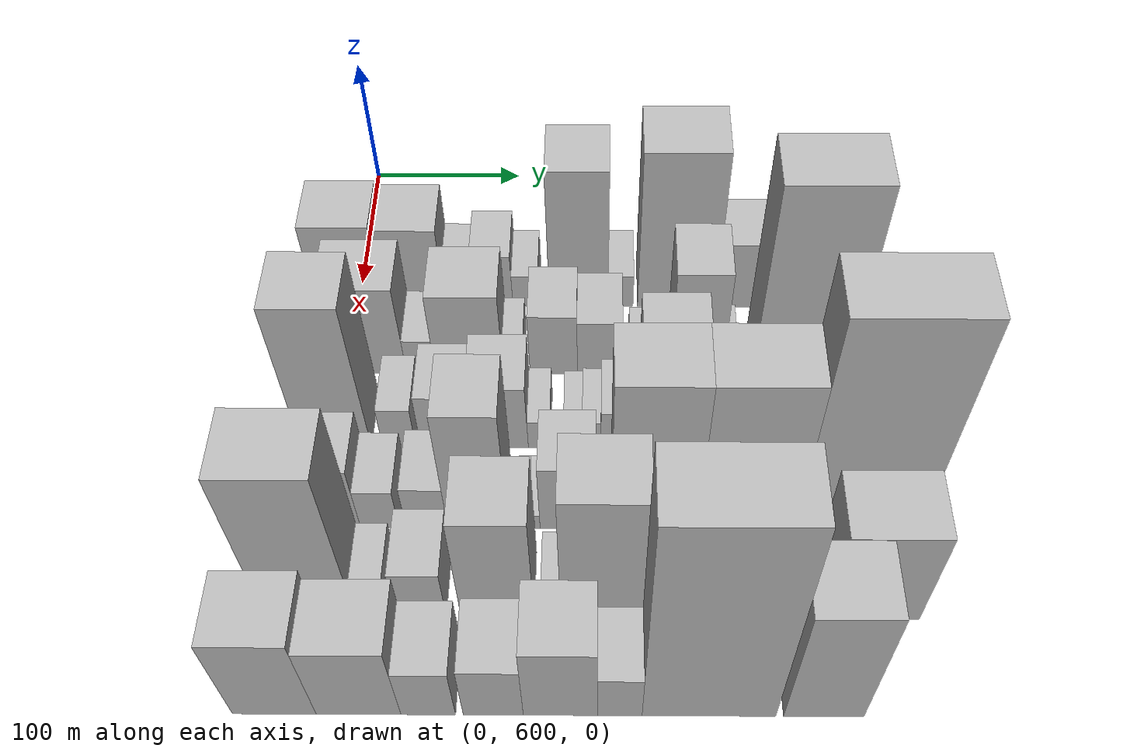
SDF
<sdf version="1.6">
 <world name="default">
  <model name="building_36">
   <static>1</static>
   <pose>100.0000 593.8116 0 0.000000 0.000000 0.000000</pose>
   <link name="link">
    <pose>0 0 37.50 0 0 0</pose>
    <collision name="collision"><geometry><box><size>40.0000 43.6551 75.0000</size></box></geometry></collision>
    <visual name="visual">
     <cast_shadows>0</cast_shadows>
     <geometry><box><size>40.0000 43.6551 75.0000</size></box></geometry>
     <material>
      <script>
       <uri>model://HANNAS_wall/materials/scripts</uri>
       <uri>model://HANNAS_wall/materials/textures</uri>
       <name>vrc/HANNAS_wall</name>
      </script>
     </material>
    </visual>
   </link>
  </model>
  <model name="building_37">
   <static>1</static>
   <pose>100.0000 636.0833 0 0.000000 0.000000 0.000000</pose>
   <link name="link">
    <pose>0 0 36.00 0 0 0</pose>
    <collision name="collision"><geometry><box><size>40.0000 40.8883 72.0000</size></box></geometry></collision>
    <visual name="visual">
     <cast_shadows>0</cast_shadows>
     <geometry><box><size>40.0000 40.8883 72.0000</size></box></geometry>
     <material>
      <script>
       <uri>model://HANNAS_wall/materials/scripts</uri>
       <uri>model://HANNAS_wall/materials/textures</uri>
       <name>vrc/HANNAS_wall</name>
      </script>
     </material>
    </visual>
   </link>
  </model>
  <model name="building_38">
   <static>1</static>
   <pose>100.0000 665.8280 0 0.000000 0.000000 0.000000</pose>
   <link name="link">
    <pose>0 0 18.00 0 0 0</pose>
    <collision name="collision"><geometry><box><size>40.0000 18.6011 36.0000</size></box></geometry></collision>
    <visual name="visual">
     <cast_shadows>0</cast_shadows>
     <geometry><box><size>40.0000 18.6011 36.0000</size></box></geometry>
     <material>
      <script>
       <uri>model://HANNAS_wall/materials/scripts</uri>
       <uri>model://HANNAS_wall/materials/textures</uri>
       <name>vrc/HANNAS_wall</name>
      </script>
     </material>
    </visual>
   </link>
  </model>
  <model name="building_39">
   <static>1</static>
   <pose>100.0000 688.0652 0 0.000000 0.000000 0.000000</pose>
   <link name="link">
    <pose>0 0 24.00 0 0 0</pose>
    <collision name="collision"><geometry><box><size>40.0000 25.8733 48.0000</size></box></geometry></collision>
    <visual name="visual">
     <cast_shadows>0</cast_shadows>
     <geometry><box><size>40.0000 25.8733 48.0000</size></box></geometry>
     <material>
      <script>
       <uri>model://HANNAS_wall/materials/scripts</uri>
       <uri>model://HANNAS_wall/materials/textures</uri>
       <name>vrc/HANNAS_wall</name>
      </script>
     </material>
    </visual>
   </link>
  </model>
  <model name="building_40">
   <static>1</static>
   <pose>100.0000 709.4919 0 0.000000 0.000000 0.000000</pose>
   <link name="link">
    <pose>0 0 15.00 0 0 0</pose>
    <collision name="collision"><geometry><box><size>40.0000 16.9801 30.0000</size></box></geometry></collision>
    <visual name="visual">
     <cast_shadows>0</cast_shadows>
     <geometry><box><size>40.0000 16.9801 30.0000</size></box></geometry>
     <material>
      <script>
       <uri>model://HANNAS_wall/materials/scripts</uri>
       <uri>model://HANNAS_wall/materials/textures</uri>
       <name>vrc/HANNAS_wall</name>
      </script>
     </material>
    </visual>
   </link>
  </model>
  <model name="building_41">
   <static>1</static>
   <pose>100.0000 744.1133 0 0.000000 0.000000 0.000000</pose>
   <link name="link">
    <pose>0 0 61.50 0 0 0</pose>
    <collision name="collision"><geometry><box><size>40.0000 38.2626 123.0000</size></box></geometry></collision>
    <visual name="visual">
     <cast_shadows>0</cast_shadows>
     <geometry><box><size>40.0000 38.2626 123.0000</size></box></geometry>
     <material>
      <script>
       <uri>model://HANNAS_wall/materials/scripts</uri>
       <uri>model://HANNAS_wall/materials/textures</uri>
       <name>vrc/HANNAS_wall</name>
      </script>
     </material>
    </visual>
   </link>
  </model>
  <model name="building_42">
   <static>1</static>
   <pose>100.0000 771.4472 0 0.000000 0.000000 0.000000</pose>
   <link name="link">
    <pose>0 0 15.00 0 0 0</pose>
    <collision name="collision"><geometry><box><size>40.0000 16.4053 30.0000</size></box></geometry></collision>
    <visual name="visual">
     <cast_shadows>0</cast_shadows>
     <geometry><box><size>40.0000 16.4053 30.0000</size></box></geometry>
     <material>
      <script>
       <uri>model://HANNAS_wall/materials/scripts</uri>
       <uri>model://HANNAS_wall/materials/textures</uri>
       <name>vrc/HANNAS_wall</name>
      </script>
     </material>
    </visual>
   </link>
  </model>
  <model name="building_43">
   <static>1</static>
   <pose>100.0000 807.9860 0 0.000000 0.000000 0.000000</pose>
   <link name="link">
    <pose>0 0 69.00 0 0 0</pose>
    <collision name="collision"><geometry><box><size>40.0000 50.6723 138.0000</size></box></geometry></collision>
    <visual name="visual">
     <cast_shadows>0</cast_shadows>
     <geometry><box><size>40.0000 50.6723 138.0000</size></box></geometry>
     <material>
      <script>
       <uri>model://HANNAS_wall/materials/scripts</uri>
       <uri>model://HANNAS_wall/materials/textures</uri>
       <name>vrc/HANNAS_wall</name>
      </script>
     </material>
    </visual>
   </link>
  </model>
  <model name="building_44">
   <static>1</static>
   <pose>100.0000 850.2724 0 0.000000 0.000000 0.000000</pose>
   <link name="link">
    <pose>0 0 30.00 0 0 0</pose>
    <collision name="collision"><geometry><box><size>40.0000 33.9005 60.0000</size></box></geometry></collision>
    <visual name="visual">
     <cast_shadows>0</cast_shadows>
     <geometry><box><size>40.0000 33.9005 60.0000</size></box></geometry>
     <material>
      <script>
       <uri>model://HANNAS_wall/materials/scripts</uri>
       <uri>model://HANNAS_wall/materials/textures</uri>
       <name>vrc/HANNAS_wall</name>
      </script>
     </material>
    </visual>
   </link>
  </model>
  <model name="building_45">
   <static>1</static>
   <pose>100.0000 884.2753 0 0.000000 0.000000 0.000000</pose>
   <link name="link">
    <pose>0 0 16.50 0 0 0</pose>
    <collision name="collision"><geometry><box><size>40.0000 18.1052 33.0000</size></box></geometry></collision>
    <visual name="visual">
     <cast_shadows>0</cast_shadows>
     <geometry><box><size>40.0000 18.1052 33.0000</size></box></geometry>
     <material>
      <script>
       <uri>model://HANNAS_wall/materials/scripts</uri>
       <uri>model://HANNAS_wall/materials/textures</uri>
       <name>vrc/HANNAS_wall</name>
      </script>
     </material>
    </visual>
   </link>
  </model>
  <model name="building_87">
   <static>1</static>
   <pose>155.0000 579.8306 0 0.000000 0.000000 0.000000</pose>
   <link name="link">
    <pose>0 0 18.00 0 0 0</pose>
    <collision name="collision"><geometry><box><size>40.0000 21.4372 36.0000</size></box></geometry></collision>
    <visual name="visual">
     <cast_shadows>0</cast_shadows>
     <geometry><box><size>40.0000 21.4372 36.0000</size></box></geometry>
     <material>
      <script>
       <uri>model://HANNAS_wall/materials/scripts</uri>
       <uri>model://HANNAS_wall/materials/textures</uri>
       <name>vrc/HANNAS_wall</name>
      </script>
     </material>
    </visual>
   </link>
  </model>
  <model name="building_88">
   <static>1</static>
   <pose>155.0000 613.5350 0 0.000000 0.000000 0.000000</pose>
   <link name="link">
    <pose>0 0 40.50 0 0 0</pose>
    <collision name="collision"><geometry><box><size>40.0000 45.9716 81.0000</size></box></geometry></collision>
    <visual name="visual">
     <cast_shadows>0</cast_shadows>
     <geometry><box><size>40.0000 45.9716 81.0000</size></box></geometry>
     <material>
      <script>
       <uri>model://HANNAS_wall/materials/scripts</uri>
       <uri>model://HANNAS_wall/materials/textures</uri>
       <name>vrc/HANNAS_wall</name>
      </script>
     </material>
    </visual>
   </link>
  </model>
  <model name="building_89">
   <static>1</static>
   <pose>155.0000 645.5434 0 0.000000 0.000000 0.000000</pose>
   <link name="link">
    <pose>0 0 16.50 0 0 0</pose>
    <collision name="collision"><geometry><box><size>40.0000 18.0453 33.0000</size></box></geometry></collision>
    <visual name="visual">
     <cast_shadows>0</cast_shadows>
     <geometry><box><size>40.0000 18.0453 33.0000</size></box></geometry>
     <material>
      <script>
       <uri>model://HANNAS_wall/materials/scripts</uri>
       <uri>model://HANNAS_wall/materials/textures</uri>
       <name>vrc/HANNAS_wall</name>
      </script>
     </material>
    </visual>
   </link>
  </model>
  <model name="building_90">
   <static>1</static>
   <pose>155.0000 676.0283 0 0.000000 0.000000 0.000000</pose>
   <link name="link">
    <pose>0 0 37.50 0 0 0</pose>
    <collision name="collision"><geometry><box><size>40.0000 42.9245 75.0000</size></box></geometry></collision>
    <visual name="visual">
     <cast_shadows>0</cast_shadows>
     <geometry><box><size>40.0000 42.9245 75.0000</size></box></geometry>
     <material>
      <script>
       <uri>model://HANNAS_wall/materials/scripts</uri>
       <uri>model://HANNAS_wall/materials/textures</uri>
       <name>vrc/HANNAS_wall</name>
      </script>
     </material>
    </visual>
   </link>
  </model>
  <model name="building_91">
   <static>1</static>
   <pose>155.0000 703.8665 0 0.000000 0.000000 0.000000</pose>
   <link name="link">
    <pose>0 0 13.50 0 0 0</pose>
    <collision name="collision"><geometry><box><size>40.0000 12.7519 27.0000</size></box></geometry></collision>
    <visual name="visual">
     <cast_shadows>0</cast_shadows>
     <geometry><box><size>40.0000 12.7519 27.0000</size></box></geometry>
     <material>
      <script>
       <uri>model://HANNAS_wall/materials/scripts</uri>
       <uri>model://HANNAS_wall/materials/textures</uri>
       <name>vrc/HANNAS_wall</name>
      </script>
     </material>
    </visual>
   </link>
  </model>
  <model name="building_92">
   <static>1</static>
   <pose>155.0000 729.1125 0 0.000000 0.000000 0.000000</pose>
   <link name="link">
    <pose>0 0 28.50 0 0 0</pose>
    <collision name="collision"><geometry><box><size>40.0000 29.7401 57.0000</size></box></geometry></collision>
    <visual name="visual">
     <cast_shadows>0</cast_shadows>
     <geometry><box><size>40.0000 29.7401 57.0000</size></box></geometry>
     <material>
      <script>
       <uri>model://HANNAS_wall/materials/scripts</uri>
       <uri>model://HANNAS_wall/materials/textures</uri>
       <name>vrc/HANNAS_wall</name>
      </script>
     </material>
    </visual>
   </link>
  </model>
  <model name="building_93">
   <static>1</static>
   <pose>155.0000 757.8463 0 0.000000 0.000000 0.000000</pose>
   <link name="link">
    <pose>0 0 25.50 0 0 0</pose>
    <collision name="collision"><geometry><box><size>40.0000 27.7275 51.0000</size></box></geometry></collision>
    <visual name="visual">
     <cast_shadows>0</cast_shadows>
     <geometry><box><size>40.0000 27.7275 51.0000</size></box></geometry>
     <material>
      <script>
       <uri>model://HANNAS_wall/materials/scripts</uri>
       <uri>model://HANNAS_wall/materials/textures</uri>
       <name>vrc/HANNAS_wall</name>
      </script>
     </material>
    </visual>
   </link>
  </model>
  <model name="building_94">
   <static>1</static>
   <pose>155.0000 781.1396 0 0.000000 0.000000 0.000000</pose>
   <link name="link">
    <pose>0 0 9.00 0 0 0</pose>
    <collision name="collision"><geometry><box><size>40.0000 8.8591 18.0000</size></box></geometry></collision>
    <visual name="visual">
     <cast_shadows>0</cast_shadows>
     <geometry><box><size>40.0000 8.8591 18.0000</size></box></geometry>
     <material>
      <script>
       <uri>model://HANNAS_wall/materials/scripts</uri>
       <uri>model://HANNAS_wall/materials/textures</uri>
       <name>vrc/HANNAS_wall</name>
      </script>
     </material>
    </visual>
   </link>
  </model>
  <model name="building_95">
   <static>1</static>
   <pose>155.0000 790.2828 0 0.000000 0.000000 0.000000</pose>
   <link name="link">
    <pose>0 0 10.50 0 0 0</pose>
    <collision name="collision"><geometry><box><size>40.0000 9.4273 21.0000</size></box></geometry></collision>
    <visual name="visual">
     <cast_shadows>0</cast_shadows>
     <geometry><box><size>40.0000 9.4273 21.0000</size></box></geometry>
     <material>
      <script>
       <uri>model://HANNAS_wall/materials/scripts</uri>
       <uri>model://HANNAS_wall/materials/textures</uri>
       <name>vrc/HANNAS_wall</name>
      </script>
     </material>
    </visual>
   </link>
  </model>
  <model name="building_96">
   <static>1</static>
   <pose>155.0000 818.4181 0 0.000000 0.000000 0.000000</pose>
   <link name="link">
    <pose>0 0 48.00 0 0 0</pose>
    <collision name="collision"><geometry><box><size>40.0000 32.8434 96.0000</size></box></geometry></collision>
    <visual name="visual">
     <cast_shadows>0</cast_shadows>
     <geometry><box><size>40.0000 32.8434 96.0000</size></box></geometry>
     <material>
      <script>
       <uri>model://HANNAS_wall/materials/scripts</uri>
       <uri>model://HANNAS_wall/materials/textures</uri>
       <name>vrc/HANNAS_wall</name>
      </script>
     </material>
    </visual>
   </link>
  </model>
  <model name="building_97">
   <static>1</static>
   <pose>155.0000 839.2624 0 0.000000 0.000000 0.000000</pose>
   <link name="link">
    <pose>0 0 10.50 0 0 0</pose>
    <collision name="collision"><geometry><box><size>40.0000 8.8451 21.0000</size></box></geometry></collision>
    <visual name="visual">
     <cast_shadows>0</cast_shadows>
     <geometry><box><size>40.0000 8.8451 21.0000</size></box></geometry>
     <material>
      <script>
       <uri>model://HANNAS_wall/materials/scripts</uri>
       <uri>model://HANNAS_wall/materials/textures</uri>
       <name>vrc/HANNAS_wall</name>
      </script>
     </material>
    </visual>
   </link>
  </model>
  <model name="building_98">
   <static>1</static>
   <pose>155.0000 883.8250 0 0.000000 0.000000 0.000000</pose>
   <link name="link">
    <pose>0 0 84.00 0 0 0</pose>
    <collision name="collision"><geometry><box><size>40.0000 60.2800 168.0000</size></box></geometry></collision>
    <visual name="visual">
     <cast_shadows>0</cast_shadows>
     <geometry><box><size>40.0000 60.2800 168.0000</size></box></geometry>
     <material>
      <script>
       <uri>model://HANNAS_wall/materials/scripts</uri>
       <uri>model://HANNAS_wall/materials/textures</uri>
       <name>vrc/HANNAS_wall</name>
      </script>
     </material>
    </visual>
   </link>
  </model>
  <model name="building_144">
   <static>1</static>
   <pose>210.0000 599.3387 0 0.000000 0.000000 0.000000</pose>
   <link name="link">
    <pose>0 0 66.00 0 0 0</pose>
    <collision name="collision"><geometry><box><size>40.0000 42.4843 132.0000</size></box></geometry></collision>
    <visual name="visual">
     <cast_shadows>0</cast_shadows>
     <geometry><box><size>40.0000 42.4843 132.0000</size></box></geometry>
     <material>
      <script>
       <uri>model://HANNAS_wall/materials/scripts</uri>
       <uri>model://HANNAS_wall/materials/textures</uri>
       <name>vrc/HANNAS_wall</name>
      </script>
     </material>
    </visual>
   </link>
  </model>
  <model name="building_145">
   <static>1</static>
   <pose>210.0000 637.5058 0 0.000000 0.000000 0.000000</pose>
   <link name="link">
    <pose>0 0 19.50 0 0 0</pose>
    <collision name="collision"><geometry><box><size>40.0000 19.8500 39.0000</size></box></geometry></collision>
    <visual name="visual">
     <cast_shadows>0</cast_shadows>
     <geometry><box><size>40.0000 19.8500 39.0000</size></box></geometry>
     <material>
      <script>
       <uri>model://HANNAS_wall/materials/scripts</uri>
       <uri>model://HANNAS_wall/materials/textures</uri>
       <name>vrc/HANNAS_wall</name>
      </script>
     </material>
    </visual>
   </link>
  </model>
  <model name="building_146">
   <static>1</static>
   <pose>210.0000 665.4912 0 0.000000 0.000000 0.000000</pose>
   <link name="link">
    <pose>0 0 25.50 0 0 0</pose>
    <collision name="collision"><geometry><box><size>40.0000 30.1207 51.0000</size></box></geometry></collision>
    <visual name="visual">
     <cast_shadows>0</cast_shadows>
     <geometry><box><size>40.0000 30.1207 51.0000</size></box></geometry>
     <material>
      <script>
       <uri>model://HANNAS_wall/materials/scripts</uri>
       <uri>model://HANNAS_wall/materials/textures</uri>
       <name>vrc/HANNAS_wall</name>
      </script>
     </material>
    </visual>
   </link>
  </model>
  <model name="building_147">
   <static>1</static>
   <pose>210.0000 697.8146 0 0.000000 0.000000 0.000000</pose>
   <link name="link">
    <pose>0 0 30.00 0 0 0</pose>
    <collision name="collision"><geometry><box><size>40.0000 34.5260 60.0000</size></box></geometry></collision>
    <visual name="visual">
     <cast_shadows>0</cast_shadows>
     <geometry><box><size>40.0000 34.5260 60.0000</size></box></geometry>
     <material>
      <script>
       <uri>model://HANNAS_wall/materials/scripts</uri>
       <uri>model://HANNAS_wall/materials/textures</uri>
       <name>vrc/HANNAS_wall</name>
      </script>
     </material>
    </visual>
   </link>
  </model>
  <model name="building_148">
   <static>1</static>
   <pose>210.0000 721.8175 0 0.000000 0.000000 0.000000</pose>
   <link name="link">
    <pose>0 0 13.50 0 0 0</pose>
    <collision name="collision"><geometry><box><size>40.0000 13.4799 27.0000</size></box></geometry></collision>
    <visual name="visual">
     <cast_shadows>0</cast_shadows>
     <geometry><box><size>40.0000 13.4799 27.0000</size></box></geometry>
     <material>
      <script>
       <uri>model://HANNAS_wall/materials/scripts</uri>
       <uri>model://HANNAS_wall/materials/textures</uri>
       <name>vrc/HANNAS_wall</name>
      </script>
     </material>
    </visual>
   </link>
  </model>
  <model name="building_149">
   <static>1</static>
   <pose>210.0000 742.1009 0 0.000000 0.000000 0.000000</pose>
   <link name="link">
    <pose>0 0 12.00 0 0 0</pose>
    <collision name="collision"><geometry><box><size>40.0000 11.0869 24.0000</size></box></geometry></collision>
    <visual name="visual">
     <cast_shadows>0</cast_shadows>
     <geometry><box><size>40.0000 11.0869 24.0000</size></box></geometry>
     <material>
      <script>
       <uri>model://HANNAS_wall/materials/scripts</uri>
       <uri>model://HANNAS_wall/materials/textures</uri>
       <name>vrc/HANNAS_wall</name>
      </script>
     </material>
    </visual>
   </link>
  </model>
  <model name="building_150">
   <static>1</static>
   <pose>210.0000 753.1944 0 0.000000 0.000000 0.000000</pose>
   <link name="link">
    <pose>0 0 13.50 0 0 0</pose>
    <collision name="collision"><geometry><box><size>40.0000 11.1000 27.0000</size></box></geometry></collision>
    <visual name="visual">
     <cast_shadows>0</cast_shadows>
     <geometry><box><size>40.0000 11.1000 27.0000</size></box></geometry>
     <material>
      <script>
       <uri>model://HANNAS_wall/materials/scripts</uri>
       <uri>model://HANNAS_wall/materials/textures</uri>
       <name>vrc/HANNAS_wall</name>
      </script>
     </material>
    </visual>
   </link>
  </model>
  <model name="building_151">
   <static>1</static>
   <pose>210.0000 768.6338 0 0.000000 0.000000 0.000000</pose>
   <link name="link">
    <pose>0 0 18.00 0 0 0</pose>
    <collision name="collision"><geometry><box><size>40.0000 19.7788 36.0000</size></box></geometry></collision>
    <visual name="visual">
     <cast_shadows>0</cast_shadows>
     <geometry><box><size>40.0000 19.7788 36.0000</size></box></geometry>
     <material>
      <script>
       <uri>model://HANNAS_wall/materials/scripts</uri>
       <uri>model://HANNAS_wall/materials/textures</uri>
       <name>vrc/HANNAS_wall</name>
      </script>
     </material>
    </visual>
   </link>
  </model>
  <model name="building_152">
   <static>1</static>
   <pose>210.0000 800.6657 0 0.000000 0.000000 0.000000</pose>
   <link name="link">
    <pose>0 0 49.50 0 0 0</pose>
    <collision name="collision"><geometry><box><size>40.0000 38.2849 99.0000</size></box></geometry></collision>
    <visual name="visual">
     <cast_shadows>0</cast_shadows>
     <geometry><box><size>40.0000 38.2849 99.0000</size></box></geometry>
     <material>
      <script>
       <uri>model://HANNAS_wall/materials/scripts</uri>
       <uri>model://HANNAS_wall/materials/textures</uri>
       <name>vrc/HANNAS_wall</name>
      </script>
     </material>
    </visual>
   </link>
  </model>
  <model name="building_153">
   <static>1</static>
   <pose>210.0000 837.8528 0 0.000000 0.000000 0.000000</pose>
   <link name="link">
    <pose>0 0 19.50 0 0 0</pose>
    <collision name="collision"><geometry><box><size>40.0000 20.0894 39.0000</size></box></geometry></collision>
    <visual name="visual">
     <cast_shadows>0</cast_shadows>
     <geometry><box><size>40.0000 20.0894 39.0000</size></box></geometry>
     <material>
      <script>
       <uri>model://HANNAS_wall/materials/scripts</uri>
       <uri>model://HANNAS_wall/materials/textures</uri>
       <name>vrc/HANNAS_wall</name>
      </script>
     </material>
    </visual>
   </link>
  </model>
  <model name="building_154">
   <static>1</static>
   <pose>210.0000 865.2195 0 0.000000 0.000000 0.000000</pose>
   <link name="link">
    <pose>0 0 33.00 0 0 0</pose>
    <collision name="collision"><geometry><box><size>40.0000 34.6439 66.0000</size></box></geometry></collision>
    <visual name="visual">
     <cast_shadows>0</cast_shadows>
     <geometry><box><size>40.0000 34.6439 66.0000</size></box></geometry>
     <material>
      <script>
       <uri>model://HANNAS_wall/materials/scripts</uri>
       <uri>model://HANNAS_wall/materials/textures</uri>
       <name>vrc/HANNAS_wall</name>
      </script>
     </material>
    </visual>
   </link>
  </model>
  <model name="building_155">
   <static>1</static>
   <pose>210.0000 898.0781 0 0.000000 0.000000 0.000000</pose>
   <link name="link">
    <pose>0 0 15.00 0 0 0</pose>
    <collision name="collision"><geometry><box><size>40.0000 17.0734 30.0000</size></box></geometry></collision>
    <visual name="visual">
     <cast_shadows>0</cast_shadows>
     <geometry><box><size>40.0000 17.0734 30.0000</size></box></geometry>
     <material>
      <script>
       <uri>model://HANNAS_wall/materials/scripts</uri>
       <uri>model://HANNAS_wall/materials/textures</uri>
       <name>vrc/HANNAS_wall</name>
      </script>
     </material>
    </visual>
   </link>
  </model>
  <model name="building_195">
   <static>1</static>
   <pose>265.0000 603.5861 0 0.000000 0.000000 0.000000</pose>
   <link name="link">
    <pose>0 0 30.00 0 0 0</pose>
    <collision name="collision"><geometry><box><size>40.0000 33.8638 60.0000</size></box></geometry></collision>
    <visual name="visual">
     <cast_shadows>0</cast_shadows>
     <geometry><box><size>40.0000 33.8638 60.0000</size></box></geometry>
     <material>
      <script>
       <uri>model://HANNAS_wall/materials/scripts</uri>
       <uri>model://HANNAS_wall/materials/textures</uri>
       <name>vrc/HANNAS_wall</name>
      </script>
     </material>
    </visual>
   </link>
  </model>
  <model name="building_196">
   <static>1</static>
   <pose>265.0000 631.6752 0 0.000000 0.000000 0.000000</pose>
   <link name="link">
    <pose>0 0 19.50 0 0 0</pose>
    <collision name="collision"><geometry><box><size>40.0000 22.3145 39.0000</size></box></geometry></collision>
    <visual name="visual">
     <cast_shadows>0</cast_shadows>
     <geometry><box><size>40.0000 22.3145 39.0000</size></box></geometry>
     <material>
      <script>
       <uri>model://HANNAS_wall/materials/scripts</uri>
       <uri>model://HANNAS_wall/materials/textures</uri>
       <name>vrc/HANNAS_wall</name>
      </script>
     </material>
    </visual>
   </link>
  </model>
  <model name="building_197">
   <static>1</static>
   <pose>265.0000 658.7979 0 0.000000 0.000000 0.000000</pose>
   <link name="link">
    <pose>0 0 21.00 0 0 0</pose>
    <collision name="collision"><geometry><box><size>40.0000 23.9310 42.0000</size></box></geometry></collision>
    <visual name="visual">
     <cast_shadows>0</cast_shadows>
     <geometry><box><size>40.0000 23.9310 42.0000</size></box></geometry>
     <material>
      <script>
       <uri>model://HANNAS_wall/materials/scripts</uri>
       <uri>model://HANNAS_wall/materials/textures</uri>
       <name>vrc/HANNAS_wall</name>
      </script>
     </material>
    </visual>
   </link>
  </model>
  <model name="building_198">
   <static>1</static>
   <pose>265.0000 688.1856 0 0.000000 0.000000 0.000000</pose>
   <link name="link">
    <pose>0 0 57.00 0 0 0</pose>
    <collision name="collision"><geometry><box><size>40.0000 34.8444 114.0000</size></box></geometry></collision>
    <visual name="visual">
     <cast_shadows>0</cast_shadows>
     <geometry><box><size>40.0000 34.8444 114.0000</size></box></geometry>
     <material>
      <script>
       <uri>model://HANNAS_wall/materials/scripts</uri>
       <uri>model://HANNAS_wall/materials/textures</uri>
       <name>vrc/HANNAS_wall</name>
      </script>
     </material>
    </visual>
   </link>
  </model>
  <model name="building_199">
   <static>1</static>
   <pose>265.0000 714.2049 0 0.000000 0.000000 0.000000</pose>
   <link name="link">
    <pose>0 0 7.50 0 0 0</pose>
    <collision name="collision"><geometry><box><size>40.0000 7.1943 15.0000</size></box></geometry></collision>
    <visual name="visual">
     <cast_shadows>0</cast_shadows>
     <geometry><box><size>40.0000 7.1943 15.0000</size></box></geometry>
     <material>
      <script>
       <uri>model://HANNAS_wall/materials/scripts</uri>
       <uri>model://HANNAS_wall/materials/textures</uri>
       <name>vrc/HANNAS_wall</name>
      </script>
     </material>
    </visual>
   </link>
  </model>
  <model name="building_200">
   <static>1</static>
   <pose>265.0000 720.8271 0 0.000000 0.000000 0.000000</pose>
   <link name="link">
    <pose>0 0 7.50 0 0 0</pose>
    <collision name="collision"><geometry><box><size>40.0000 6.0502 15.0000</size></box></geometry></collision>
    <visual name="visual">
     <cast_shadows>0</cast_shadows>
     <geometry><box><size>40.0000 6.0502 15.0000</size></box></geometry>
     <material>
      <script>
       <uri>model://HANNAS_wall/materials/scripts</uri>
       <uri>model://HANNAS_wall/materials/textures</uri>
       <name>vrc/HANNAS_wall</name>
      </script>
     </material>
    </visual>
   </link>
  </model>
  <model name="building_201">
   <static>1</static>
   <pose>265.0000 739.7854 0 0.000000 0.000000 0.000000</pose>
   <link name="link">
    <pose>0 0 31.50 0 0 0</pose>
    <collision name="collision"><geometry><box><size>40.0000 31.8664 63.0000</size></box></geometry></collision>
    <visual name="visual">
     <cast_shadows>0</cast_shadows>
     <geometry><box><size>40.0000 31.8664 63.0000</size></box></geometry>
     <material>
      <script>
       <uri>model://HANNAS_wall/materials/scripts</uri>
       <uri>model://HANNAS_wall/materials/textures</uri>
       <name>vrc/HANNAS_wall</name>
      </script>
     </material>
    </visual>
   </link>
  </model>
  <model name="building_202">
   <static>1</static>
   <pose>265.0000 789.4077 0 0.000000 0.000000 0.000000</pose>
   <link name="link">
    <pose>0 0 70.50 0 0 0</pose>
    <collision name="collision"><geometry><box><size>40.0000 49.3781 141.0000</size></box></geometry></collision>
    <visual name="visual">
     <cast_shadows>0</cast_shadows>
     <geometry><box><size>40.0000 49.3781 141.0000</size></box></geometry>
     <material>
      <script>
       <uri>model://HANNAS_wall/materials/scripts</uri>
       <uri>model://HANNAS_wall/materials/textures</uri>
       <name>vrc/HANNAS_wall</name>
      </script>
     </material>
    </visual>
   </link>
  </model>
  <model name="building_203">
   <static>1</static>
   <pose>265.0000 842.1254 0 0.000000 0.000000 0.000000</pose>
   <link name="link">
    <pose>0 0 70.50 0 0 0</pose>
    <collision name="collision"><geometry><box><size>40.0000 56.0572 141.0000</size></box></geometry></collision>
    <visual name="visual">
     <cast_shadows>0</cast_shadows>
     <geometry><box><size>40.0000 56.0572 141.0000</size></box></geometry>
     <material>
      <script>
       <uri>model://HANNAS_wall/materials/scripts</uri>
       <uri>model://HANNAS_wall/materials/textures</uri>
       <name>vrc/HANNAS_wall</name>
      </script>
     </material>
    </visual>
   </link>
  </model>
  <model name="building_204">
   <static>1</static>
   <pose>265.0000 906.2501 0 0.000000 0.000000 0.000000</pose>
   <link name="link">
    <pose>0 0 97.50 0 0 0</pose>
    <collision name="collision"><geometry><box><size>40.0000 72.1922 195.0000</size></box></geometry></collision>
    <visual name="visual">
     <cast_shadows>0</cast_shadows>
     <geometry><box><size>40.0000 72.1922 195.0000</size></box></geometry>
     <material>
      <script>
       <uri>model://HANNAS_wall/materials/scripts</uri>
       <uri>model://HANNAS_wall/materials/textures</uri>
       <name>vrc/HANNAS_wall</name>
      </script>
     </material>
    </visual>
   </link>
  </model>
  <model name="building_247">
   <static>1</static>
   <pose>320.0000 599.2114 0 0.000000 0.000000 0.000000</pose>
   <link name="link">
    <pose>0 0 72.00 0 0 0</pose>
    <collision name="collision"><geometry><box><size>40.0000 50.0929 144.0000</size></box></geometry></collision>
    <visual name="visual">
     <cast_shadows>0</cast_shadows>
     <geometry><box><size>40.0000 50.0929 144.0000</size></box></geometry>
     <material>
      <script>
       <uri>model://HANNAS_wall/materials/scripts</uri>
       <uri>model://HANNAS_wall/materials/textures</uri>
       <name>vrc/HANNAS_wall</name>
      </script>
     </material>
    </visual>
   </link>
  </model>
  <model name="building_248">
   <static>1</static>
   <pose>320.0000 632.9484 0 0.000000 0.000000 0.000000</pose>
   <link name="link">
    <pose>0 0 16.50 0 0 0</pose>
    <collision name="collision"><geometry><box><size>40.0000 17.3810 33.0000</size></box></geometry></collision>
    <visual name="visual">
     <cast_shadows>0</cast_shadows>
     <geometry><box><size>40.0000 17.3810 33.0000</size></box></geometry>
     <material>
      <script>
       <uri>model://HANNAS_wall/materials/scripts</uri>
       <uri>model://HANNAS_wall/materials/textures</uri>
       <name>vrc/HANNAS_wall</name>
      </script>
     </material>
    </visual>
   </link>
  </model>
  <model name="building_249">
   <static>1</static>
   <pose>320.0000 660.3754 0 0.000000 0.000000 0.000000</pose>
   <link name="link">
    <pose>0 0 24.00 0 0 0</pose>
    <collision name="collision"><geometry><box><size>40.0000 27.4731 48.0000</size></box></geometry></collision>
    <visual name="visual">
     <cast_shadows>0</cast_shadows>
     <geometry><box><size>40.0000 27.4731 48.0000</size></box></geometry>
     <material>
      <script>
       <uri>model://HANNAS_wall/materials/scripts</uri>
       <uri>model://HANNAS_wall/materials/textures</uri>
       <name>vrc/HANNAS_wall</name>
      </script>
     </material>
    </visual>
   </link>
  </model>
  <model name="building_250">
   <static>1</static>
   <pose>320.0000 702.2115 0 0.000000 0.000000 0.000000</pose>
   <link name="link">
    <pose>0 0 51.00 0 0 0</pose>
    <collision name="collision"><geometry><box><size>40.0000 40.1990 102.0000</size></box></geometry></collision>
    <visual name="visual">
     <cast_shadows>0</cast_shadows>
     <geometry><box><size>40.0000 40.1990 102.0000</size></box></geometry>
     <material>
      <script>
       <uri>model://HANNAS_wall/materials/scripts</uri>
       <uri>model://HANNAS_wall/materials/textures</uri>
       <name>vrc/HANNAS_wall</name>
      </script>
     </material>
    </visual>
   </link>
  </model>
  <model name="building_251">
   <static>1</static>
   <pose>320.0000 731.5941 0 0.000000 0.000000 0.000000</pose>
   <link name="link">
    <pose>0 0 12.00 0 0 0</pose>
    <collision name="collision"><geometry><box><size>40.0000 10.5662 24.0000</size></box></geometry></collision>
    <visual name="visual">
     <cast_shadows>0</cast_shadows>
     <geometry><box><size>40.0000 10.5662 24.0000</size></box></geometry>
     <material>
      <script>
       <uri>model://HANNAS_wall/materials/scripts</uri>
       <uri>model://HANNAS_wall/materials/textures</uri>
       <name>vrc/HANNAS_wall</name>
      </script>
     </material>
    </visual>
   </link>
  </model>
  <model name="building_252">
   <static>1</static>
   <pose>320.0000 760.1694 0 0.000000 0.000000 0.000000</pose>
   <link name="link">
    <pose>0 0 61.50 0 0 0</pose>
    <collision name="collision"><geometry><box><size>40.0000 46.5844 123.0000</size></box></geometry></collision>
    <visual name="visual">
     <cast_shadows>0</cast_shadows>
     <geometry><box><size>40.0000 46.5844 123.0000</size></box></geometry>
     <material>
      <script>
       <uri>model://HANNAS_wall/materials/scripts</uri>
       <uri>model://HANNAS_wall/materials/textures</uri>
       <name>vrc/HANNAS_wall</name>
      </script>
     </material>
    </visual>
   </link>
  </model>
  <model name="building_253">
   <static>1</static>
   <pose>320.0000 797.8209 0 0.000000 0.000000 0.000000</pose>
   <link name="link">
    <pose>0 0 16.50 0 0 0</pose>
    <collision name="collision"><geometry><box><size>40.0000 18.7186 33.0000</size></box></geometry></collision>
    <visual name="visual">
     <cast_shadows>0</cast_shadows>
     <geometry><box><size>40.0000 18.7186 33.0000</size></box></geometry>
     <material>
      <script>
       <uri>model://HANNAS_wall/materials/scripts</uri>
       <uri>model://HANNAS_wall/materials/textures</uri>
       <name>vrc/HANNAS_wall</name>
      </script>
     </material>
    </visual>
   </link>
  </model>
  <model name="building_254">
   <static>1</static>
   <pose>320.0000 827.8364 0 0.000000 0.000000 0.000000</pose>
   <link name="link">
    <pose>0 0 30.00 0 0 0</pose>
    <collision name="collision"><geometry><box><size>40.0000 31.3125 60.0000</size></box></geometry></collision>
    <visual name="visual">
     <cast_shadows>0</cast_shadows>
     <geometry><box><size>40.0000 31.3125 60.0000</size></box></geometry>
     <material>
      <script>
       <uri>model://HANNAS_wall/materials/scripts</uri>
       <uri>model://HANNAS_wall/materials/textures</uri>
       <name>vrc/HANNAS_wall</name>
      </script>
     </material>
    </visual>
   </link>
  </model>
  <model name="building_255">
   <static>1</static>
   <pose>320.0000 857.4930 0 0.000000 0.000000 0.000000</pose>
   <link name="link">
    <pose>0 0 24.00 0 0 0</pose>
    <collision name="collision"><geometry><box><size>40.0000 28.0006 48.0000</size></box></geometry></collision>
    <visual name="visual">
     <cast_shadows>0</cast_shadows>
     <geometry><box><size>40.0000 28.0006 48.0000</size></box></geometry>
     <material>
      <script>
       <uri>model://HANNAS_wall/materials/scripts</uri>
       <uri>model://HANNAS_wall/materials/textures</uri>
       <name>vrc/HANNAS_wall</name>
      </script>
     </material>
    </visual>
   </link>
  </model>
  <model name="building_256">
   <static>1</static>
   <pose>320.0000 907.5324 0 0.000000 0.000000 0.000000</pose>
   <link name="link">
    <pose>0 0 45.00 0 0 0</pose>
    <collision name="collision"><geometry><box><size>40.0000 52.0782 90.0000</size></box></geometry></collision>
    <visual name="visual">
     <cast_shadows>0</cast_shadows>
     <geometry><box><size>40.0000 52.0782 90.0000</size></box></geometry>
     <material>
      <script>
       <uri>model://HANNAS_wall/materials/scripts</uri>
       <uri>model://HANNAS_wall/materials/textures</uri>
       <name>vrc/HANNAS_wall</name>
      </script>
     </material>
    </visual>
   </link>
  </model>
  <model name="building_299">
   <static>1</static>
   <pose>375.0000 588.3644 0 0.000000 0.000000 0.000000</pose>
   <link name="link">
    <pose>0 0 42.00 0 0 0</pose>
    <collision name="collision"><geometry><box><size>40.0000 43.7580 84.0000</size></box></geometry></collision>
    <visual name="visual">
     <cast_shadows>0</cast_shadows>
     <geometry><box><size>40.0000 43.7580 84.0000</size></box></geometry>
     <material>
      <script>
       <uri>model://HANNAS_wall/materials/scripts</uri>
       <uri>model://HANNAS_wall/materials/textures</uri>
       <name>vrc/HANNAS_wall</name>
      </script>
     </material>
    </visual>
   </link>
  </model>
  <model name="building_300">
   <static>1</static>
   <pose>375.0000 632.4005 0 0.000000 0.000000 0.000000</pose>
   <link name="link">
    <pose>0 0 37.50 0 0 0</pose>
    <collision name="collision"><geometry><box><size>40.0000 44.3141 75.0000</size></box></geometry></collision>
    <visual name="visual">
     <cast_shadows>0</cast_shadows>
     <geometry><box><size>40.0000 44.3141 75.0000</size></box></geometry>
     <material>
      <script>
       <uri>model://HANNAS_wall/materials/scripts</uri>
       <uri>model://HANNAS_wall/materials/textures</uri>
       <name>vrc/HANNAS_wall</name>
      </script>
     </material>
    </visual>
   </link>
  </model>
  <model name="building_301">
   <static>1</static>
   <pose>375.0000 668.8175 0 0.000000 0.000000 0.000000</pose>
   <link name="link">
    <pose>0 0 25.50 0 0 0</pose>
    <collision name="collision"><geometry><box><size>40.0000 28.5199 51.0000</size></box></geometry></collision>
    <visual name="visual">
     <cast_shadows>0</cast_shadows>
     <geometry><box><size>40.0000 28.5199 51.0000</size></box></geometry>
     <material>
      <script>
       <uri>model://HANNAS_wall/materials/scripts</uri>
       <uri>model://HANNAS_wall/materials/textures</uri>
       <name>vrc/HANNAS_wall</name>
      </script>
     </material>
    </visual>
   </link>
  </model>
  <model name="building_302">
   <static>1</static>
   <pose>375.0000 702.7515 0 0.000000 0.000000 0.000000</pose>
   <link name="link">
    <pose>0 0 27.00 0 0 0</pose>
    <collision name="collision"><geometry><box><size>40.0000 31.3481 54.0000</size></box></geometry></collision>
    <visual name="visual">
     <cast_shadows>0</cast_shadows>
     <geometry><box><size>40.0000 31.3481 54.0000</size></box></geometry>
     <material>
      <script>
       <uri>model://HANNAS_wall/materials/scripts</uri>
       <uri>model://HANNAS_wall/materials/textures</uri>
       <name>vrc/HANNAS_wall</name>
      </script>
     </material>
    </visual>
   </link>
  </model>
  <model name="building_303">
   <static>1</static>
   <pose>375.0000 737.7386 0 0.000000 0.000000 0.000000</pose>
   <link name="link">
    <pose>0 0 37.50 0 0 0</pose>
    <collision name="collision"><geometry><box><size>40.0000 38.6261 75.0000</size></box></geometry></collision>
    <visual name="visual">
     <cast_shadows>0</cast_shadows>
     <geometry><box><size>40.0000 38.6261 75.0000</size></box></geometry>
     <material>
      <script>
       <uri>model://HANNAS_wall/materials/scripts</uri>
       <uri>model://HANNAS_wall/materials/textures</uri>
       <name>vrc/HANNAS_wall</name>
      </script>
     </material>
    </visual>
   </link>
  </model>
  <model name="building_304">
   <static>1</static>
   <pose>375.0000 768.7192 0 0.000000 0.000000 0.000000</pose>
   <link name="link">
    <pose>0 0 22.50 0 0 0</pose>
    <collision name="collision"><geometry><box><size>40.0000 23.3352 45.0000</size></box></geometry></collision>
    <visual name="visual">
     <cast_shadows>0</cast_shadows>
     <geometry><box><size>40.0000 23.3352 45.0000</size></box></geometry>
     <material>
      <script>
       <uri>model://HANNAS_wall/materials/scripts</uri>
       <uri>model://HANNAS_wall/materials/textures</uri>
       <name>vrc/HANNAS_wall</name>
      </script>
     </material>
    </visual>
   </link>
  </model>
  <model name="building_305">
   <static>1</static>
   <pose>375.0000 815.2904 0 0.000000 0.000000 0.000000</pose>
   <link name="link">
    <pose>0 0 100.50 0 0 0</pose>
    <collision name="collision"><geometry><box><size>40.0000 69.8072 201.0000</size></box></geometry></collision>
    <visual name="visual">
     <cast_shadows>0</cast_shadows>
     <geometry><box><size>40.0000 69.8072 201.0000</size></box></geometry>
     <material>
      <script>
       <uri>model://HANNAS_wall/materials/scripts</uri>
       <uri>model://HANNAS_wall/materials/textures</uri>
       <name>vrc/HANNAS_wall</name>
      </script>
     </material>
    </visual>
   </link>
  </model>
  <model name="building_306">
   <static>1</static>
   <pose>375.0000 875.1724 0 0.000000 0.000000 0.000000</pose>
   <link name="link">
    <pose>0 0 58.50 0 0 0</pose>
    <collision name="collision"><geometry><box><size>40.0000 41.9568 117.0000</size></box></geometry></collision>
    <visual name="visual">
     <cast_shadows>0</cast_shadows>
     <geometry><box><size>40.0000 41.9568 117.0000</size></box></geometry>
     <material>
      <script>
       <uri>model://HANNAS_wall/materials/scripts</uri>
       <uri>model://HANNAS_wall/materials/textures</uri>
       <name>vrc/HANNAS_wall</name>
      </script>
     </material>
    </visual>
   </link>
  </model>
 </world>
</sdf>
